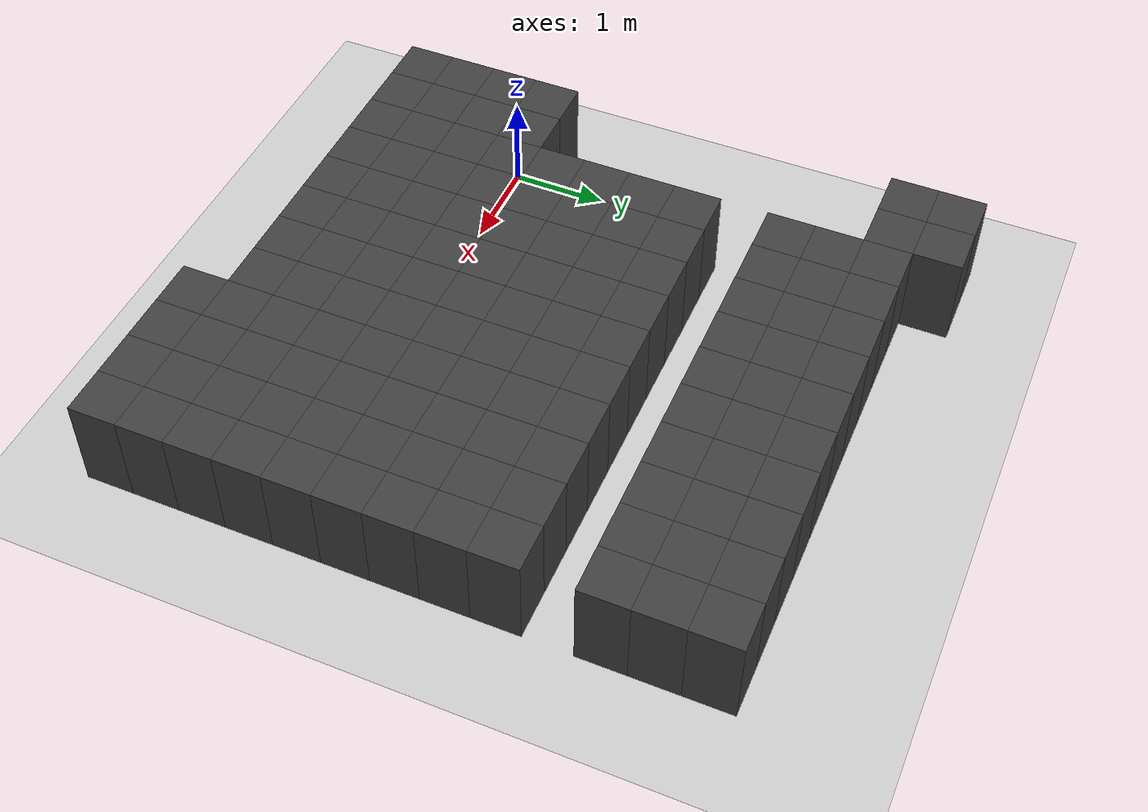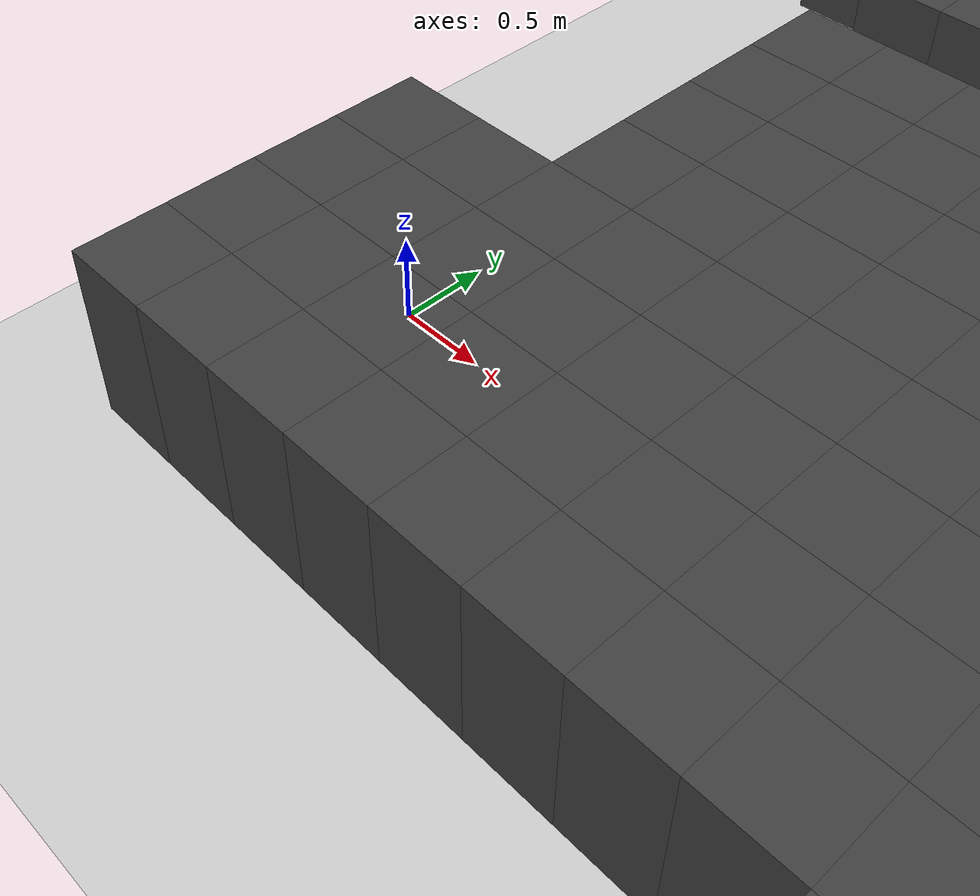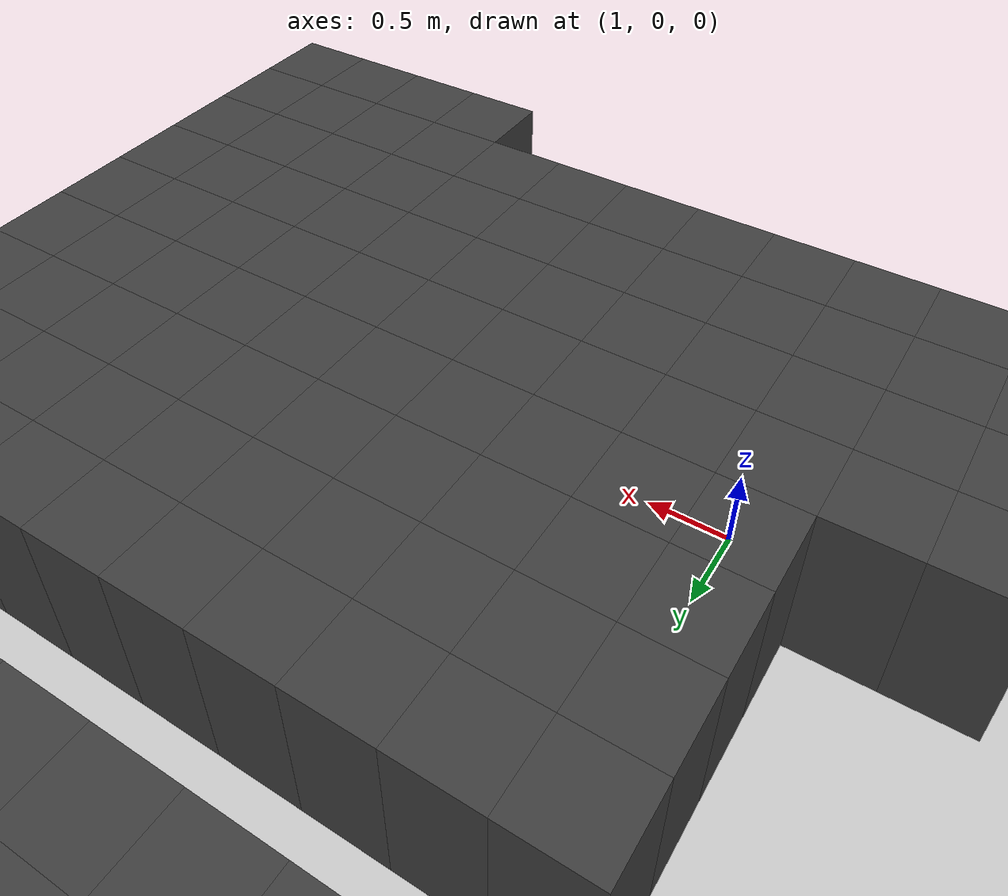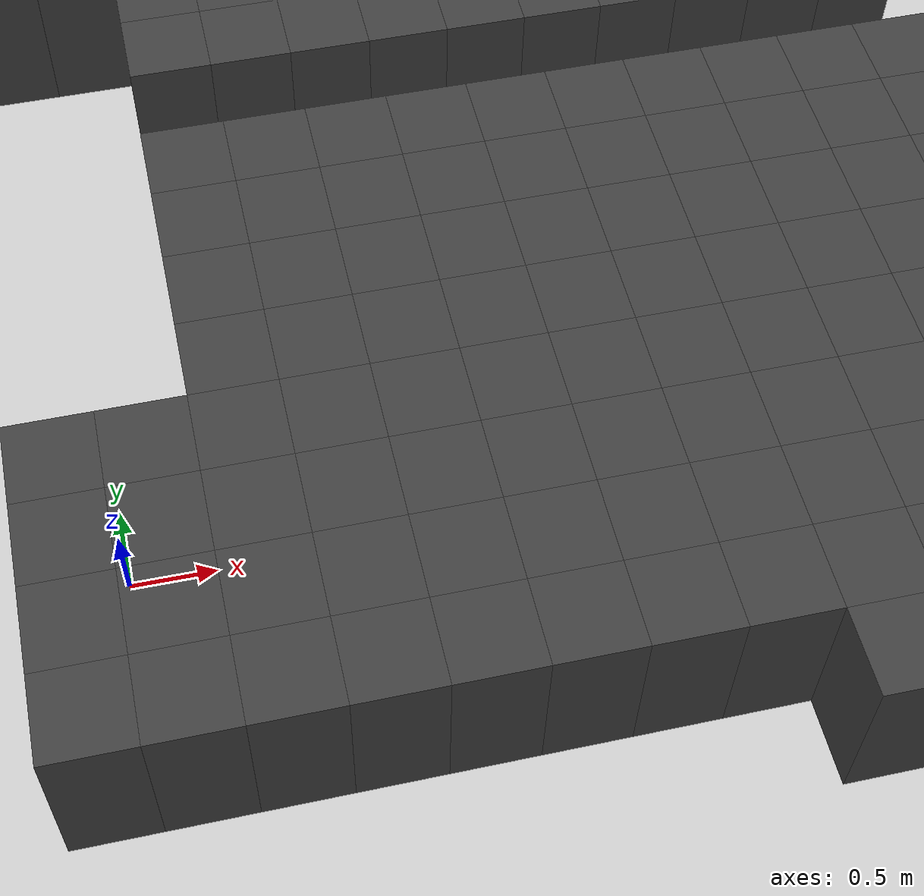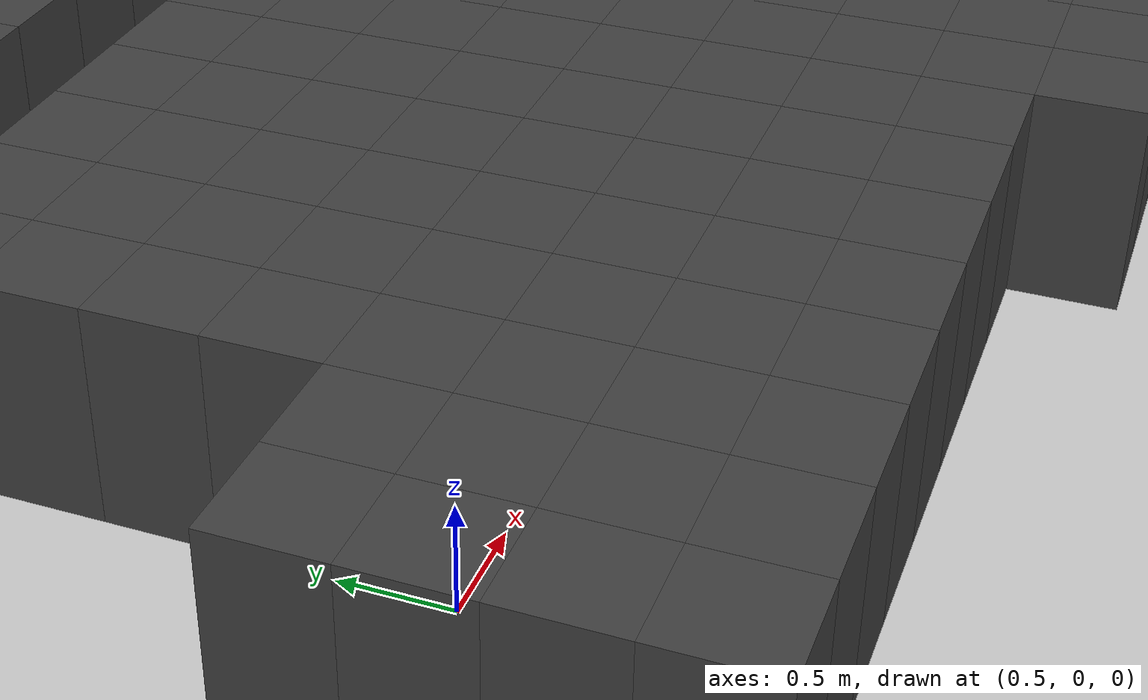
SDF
<sdf version="1.7">
 <world name="map_10764">
  <model name="ground_plane">
   <static>true</static>
   <link name="link">
    <collision name="collision">
     <geometry><plane><normal>0 0 1</normal><size>200 200</size></plane></geometry>
    </collision>
    <visual name="visual">
     <geometry><plane><normal>0 0 1</normal><size>200 200</size></plane></geometry>
     <material><ambient>0.8 0.8 0.8 1</ambient><diffuse>0.8 0.8 0.8 1</diffuse></material>
    </visual>
   </link>
  </model>
  <model name="maze_environment">
   <static>true</static>
   <link name="wall_709">
    <pose>-0.250 4.750 0.500 0 0 0</pose>
    <collision name="col"><geometry><box><size>0.5 0.5 1.0</size></box></geometry></collision>
    <visual name="vis">
     <geometry><box><size>0.5 0.5 1.0</size></box></geometry>
     <material><ambient>0.15 0.15 0.15 1</ambient><diffuse>0.25 0.25 0.25 1</diffuse></material>
    </visual>
   </link>
   <link name="wall_710">
    <pose>0.250 4.750 0.500 0 0 0</pose>
    <collision name="col"><geometry><box><size>0.5 0.5 1.0</size></box></geometry></collision>
    <visual name="vis">
     <geometry><box><size>0.5 0.5 1.0</size></box></geometry>
     <material><ambient>0.15 0.15 0.15 1</ambient><diffuse>0.25 0.25 0.25 1</diffuse></material>
    </visual>
   </link>
   <link name="wall_751">
    <pose>-0.250 4.250 0.500 0 0 0</pose>
    <collision name="col"><geometry><box><size>0.5 0.5 1.0</size></box></geometry></collision>
    <visual name="vis">
     <geometry><box><size>0.5 0.5 1.0</size></box></geometry>
     <material><ambient>0.15 0.15 0.15 1</ambient><diffuse>0.25 0.25 0.25 1</diffuse></material>
    </visual>
   </link>
   <link name="wall_752">
    <pose>0.250 4.250 0.500 0 0 0</pose>
    <collision name="col"><geometry><box><size>0.5 0.5 1.0</size></box></geometry></collision>
    <visual name="vis">
     <geometry><box><size>0.5 0.5 1.0</size></box></geometry>
     <material><ambient>0.15 0.15 0.15 1</ambient><diffuse>0.25 0.25 0.25 1</diffuse></material>
    </visual>
   </link>
   <link name="wall_753">
    <pose>0.750 4.250 0.500 0 0 0</pose>
    <collision name="col"><geometry><box><size>0.5 0.5 1.0</size></box></geometry></collision>
    <visual name="vis">
     <geometry><box><size>0.5 0.5 1.0</size></box></geometry>
     <material><ambient>0.15 0.15 0.15 1</ambient><diffuse>0.25 0.25 0.25 1</diffuse></material>
    </visual>
   </link>
   <link name="wall_754">
    <pose>1.250 4.250 0.500 0 0 0</pose>
    <collision name="col"><geometry><box><size>0.5 0.5 1.0</size></box></geometry></collision>
    <visual name="vis">
     <geometry><box><size>0.5 0.5 1.0</size></box></geometry>
     <material><ambient>0.15 0.15 0.15 1</ambient><diffuse>0.25 0.25 0.25 1</diffuse></material>
    </visual>
   </link>
   <link name="wall_755">
    <pose>1.750 4.250 0.500 0 0 0</pose>
    <collision name="col"><geometry><box><size>0.5 0.5 1.0</size></box></geometry></collision>
    <visual name="vis">
     <geometry><box><size>0.5 0.5 1.0</size></box></geometry>
     <material><ambient>0.15 0.15 0.15 1</ambient><diffuse>0.25 0.25 0.25 1</diffuse></material>
    </visual>
   </link>
   <link name="wall_756">
    <pose>2.250 4.250 0.500 0 0 0</pose>
    <collision name="col"><geometry><box><size>0.5 0.5 1.0</size></box></geometry></collision>
    <visual name="vis">
     <geometry><box><size>0.5 0.5 1.0</size></box></geometry>
     <material><ambient>0.15 0.15 0.15 1</ambient><diffuse>0.25 0.25 0.25 1</diffuse></material>
    </visual>
   </link>
   <link name="wall_757">
    <pose>2.750 4.250 0.500 0 0 0</pose>
    <collision name="col"><geometry><box><size>0.5 0.5 1.0</size></box></geometry></collision>
    <visual name="vis">
     <geometry><box><size>0.5 0.5 1.0</size></box></geometry>
     <material><ambient>0.15 0.15 0.15 1</ambient><diffuse>0.25 0.25 0.25 1</diffuse></material>
    </visual>
   </link>
   <link name="wall_758">
    <pose>3.250 4.250 0.500 0 0 0</pose>
    <collision name="col"><geometry><box><size>0.5 0.5 1.0</size></box></geometry></collision>
    <visual name="vis">
     <geometry><box><size>0.5 0.5 1.0</size></box></geometry>
     <material><ambient>0.15 0.15 0.15 1</ambient><diffuse>0.25 0.25 0.25 1</diffuse></material>
    </visual>
   </link>
   <link name="wall_759">
    <pose>3.750 4.250 0.500 0 0 0</pose>
    <collision name="col"><geometry><box><size>0.5 0.5 1.0</size></box></geometry></collision>
    <visual name="vis">
     <geometry><box><size>0.5 0.5 1.0</size></box></geometry>
     <material><ambient>0.15 0.15 0.15 1</ambient><diffuse>0.25 0.25 0.25 1</diffuse></material>
    </visual>
   </link>
   <link name="wall_760">
    <pose>4.250 4.250 0.500 0 0 0</pose>
    <collision name="col"><geometry><box><size>0.5 0.5 1.0</size></box></geometry></collision>
    <visual name="vis">
     <geometry><box><size>0.5 0.5 1.0</size></box></geometry>
     <material><ambient>0.15 0.15 0.15 1</ambient><diffuse>0.25 0.25 0.25 1</diffuse></material>
    </visual>
   </link>
   <link name="wall_761">
    <pose>4.750 4.250 0.500 0 0 0</pose>
    <collision name="col"><geometry><box><size>0.5 0.5 1.0</size></box></geometry></collision>
    <visual name="vis">
     <geometry><box><size>0.5 0.5 1.0</size></box></geometry>
     <material><ambient>0.15 0.15 0.15 1</ambient><diffuse>0.25 0.25 0.25 1</diffuse></material>
    </visual>
   </link>
   <link name="wall_762">
    <pose>5.250 4.250 0.500 0 0 0</pose>
    <collision name="col"><geometry><box><size>0.5 0.5 1.0</size></box></geometry></collision>
    <visual name="vis">
     <geometry><box><size>0.5 0.5 1.0</size></box></geometry>
     <material><ambient>0.15 0.15 0.15 1</ambient><diffuse>0.25 0.25 0.25 1</diffuse></material>
    </visual>
   </link>
   <link name="wall_786">
    <pose>0.750 3.750 0.500 0 0 0</pose>
    <collision name="col"><geometry><box><size>0.5 0.5 1.0</size></box></geometry></collision>
    <visual name="vis">
     <geometry><box><size>0.5 0.5 1.0</size></box></geometry>
     <material><ambient>0.15 0.15 0.15 1</ambient><diffuse>0.25 0.25 0.25 1</diffuse></material>
    </visual>
   </link>
   <link name="wall_787">
    <pose>1.250 3.750 0.500 0 0 0</pose>
    <collision name="col"><geometry><box><size>0.5 0.5 1.0</size></box></geometry></collision>
    <visual name="vis">
     <geometry><box><size>0.5 0.5 1.0</size></box></geometry>
     <material><ambient>0.15 0.15 0.15 1</ambient><diffuse>0.25 0.25 0.25 1</diffuse></material>
    </visual>
   </link>
   <link name="wall_788">
    <pose>1.750 3.750 0.500 0 0 0</pose>
    <collision name="col"><geometry><box><size>0.5 0.5 1.0</size></box></geometry></collision>
    <visual name="vis">
     <geometry><box><size>0.5 0.5 1.0</size></box></geometry>
     <material><ambient>0.15 0.15 0.15 1</ambient><diffuse>0.25 0.25 0.25 1</diffuse></material>
    </visual>
   </link>
   <link name="wall_789">
    <pose>2.250 3.750 0.500 0 0 0</pose>
    <collision name="col"><geometry><box><size>0.5 0.5 1.0</size></box></geometry></collision>
    <visual name="vis">
     <geometry><box><size>0.5 0.5 1.0</size></box></geometry>
     <material><ambient>0.15 0.15 0.15 1</ambient><diffuse>0.25 0.25 0.25 1</diffuse></material>
    </visual>
   </link>
   <link name="wall_790">
    <pose>2.750 3.750 0.500 0 0 0</pose>
    <collision name="col"><geometry><box><size>0.5 0.5 1.0</size></box></geometry></collision>
    <visual name="vis">
     <geometry><box><size>0.5 0.5 1.0</size></box></geometry>
     <material><ambient>0.15 0.15 0.15 1</ambient><diffuse>0.25 0.25 0.25 1</diffuse></material>
    </visual>
   </link>
   <link name="wall_791">
    <pose>3.250 3.750 0.500 0 0 0</pose>
    <collision name="col"><geometry><box><size>0.5 0.5 1.0</size></box></geometry></collision>
    <visual name="vis">
     <geometry><box><size>0.5 0.5 1.0</size></box></geometry>
     <material><ambient>0.15 0.15 0.15 1</ambient><diffuse>0.25 0.25 0.25 1</diffuse></material>
    </visual>
   </link>
   <link name="wall_792">
    <pose>3.750 3.750 0.500 0 0 0</pose>
    <collision name="col"><geometry><box><size>0.5 0.5 1.0</size></box></geometry></collision>
    <visual name="vis">
     <geometry><box><size>0.5 0.5 1.0</size></box></geometry>
     <material><ambient>0.15 0.15 0.15 1</ambient><diffuse>0.25 0.25 0.25 1</diffuse></material>
    </visual>
   </link>
   <link name="wall_793">
    <pose>4.250 3.750 0.500 0 0 0</pose>
    <collision name="col"><geometry><box><size>0.5 0.5 1.0</size></box></geometry></collision>
    <visual name="vis">
     <geometry><box><size>0.5 0.5 1.0</size></box></geometry>
     <material><ambient>0.15 0.15 0.15 1</ambient><diffuse>0.25 0.25 0.25 1</diffuse></material>
    </visual>
   </link>
   <link name="wall_794">
    <pose>4.750 3.750 0.500 0 0 0</pose>
    <collision name="col"><geometry><box><size>0.5 0.5 1.0</size></box></geometry></collision>
    <visual name="vis">
     <geometry><box><size>0.5 0.5 1.0</size></box></geometry>
     <material><ambient>0.15 0.15 0.15 1</ambient><diffuse>0.25 0.25 0.25 1</diffuse></material>
    </visual>
   </link>
   <link name="wall_795">
    <pose>5.250 3.750 0.500 0 0 0</pose>
    <collision name="col"><geometry><box><size>0.5 0.5 1.0</size></box></geometry></collision>
    <visual name="vis">
     <geometry><box><size>0.5 0.5 1.0</size></box></geometry>
     <material><ambient>0.15 0.15 0.15 1</ambient><diffuse>0.25 0.25 0.25 1</diffuse></material>
    </visual>
   </link>
   <link name="wall_810">
    <pose>0.750 3.250 0.500 0 0 0</pose>
    <collision name="col"><geometry><box><size>0.5 0.5 1.0</size></box></geometry></collision>
    <visual name="vis">
     <geometry><box><size>0.5 0.5 1.0</size></box></geometry>
     <material><ambient>0.15 0.15 0.15 1</ambient><diffuse>0.25 0.25 0.25 1</diffuse></material>
    </visual>
   </link>
   <link name="wall_811">
    <pose>1.250 3.250 0.500 0 0 0</pose>
    <collision name="col"><geometry><box><size>0.5 0.5 1.0</size></box></geometry></collision>
    <visual name="vis">
     <geometry><box><size>0.5 0.5 1.0</size></box></geometry>
     <material><ambient>0.15 0.15 0.15 1</ambient><diffuse>0.25 0.25 0.25 1</diffuse></material>
    </visual>
   </link>
   <link name="wall_812">
    <pose>1.750 3.250 0.500 0 0 0</pose>
    <collision name="col"><geometry><box><size>0.5 0.5 1.0</size></box></geometry></collision>
    <visual name="vis">
     <geometry><box><size>0.5 0.5 1.0</size></box></geometry>
     <material><ambient>0.15 0.15 0.15 1</ambient><diffuse>0.25 0.25 0.25 1</diffuse></material>
    </visual>
   </link>
   <link name="wall_813">
    <pose>2.250 3.250 0.500 0 0 0</pose>
    <collision name="col"><geometry><box><size>0.5 0.5 1.0</size></box></geometry></collision>
    <visual name="vis">
     <geometry><box><size>0.5 0.5 1.0</size></box></geometry>
     <material><ambient>0.15 0.15 0.15 1</ambient><diffuse>0.25 0.25 0.25 1</diffuse></material>
    </visual>
   </link>
   <link name="wall_814">
    <pose>2.750 3.250 0.500 0 0 0</pose>
    <collision name="col"><geometry><box><size>0.5 0.5 1.0</size></box></geometry></collision>
    <visual name="vis">
     <geometry><box><size>0.5 0.5 1.0</size></box></geometry>
     <material><ambient>0.15 0.15 0.15 1</ambient><diffuse>0.25 0.25 0.25 1</diffuse></material>
    </visual>
   </link>
   <link name="wall_815">
    <pose>3.250 3.250 0.500 0 0 0</pose>
    <collision name="col"><geometry><box><size>0.5 0.5 1.0</size></box></geometry></collision>
    <visual name="vis">
     <geometry><box><size>0.5 0.5 1.0</size></box></geometry>
     <material><ambient>0.15 0.15 0.15 1</ambient><diffuse>0.25 0.25 0.25 1</diffuse></material>
    </visual>
   </link>
   <link name="wall_816">
    <pose>3.750 3.250 0.500 0 0 0</pose>
    <collision name="col"><geometry><box><size>0.5 0.5 1.0</size></box></geometry></collision>
    <visual name="vis">
     <geometry><box><size>0.5 0.5 1.0</size></box></geometry>
     <material><ambient>0.15 0.15 0.15 1</ambient><diffuse>0.25 0.25 0.25 1</diffuse></material>
    </visual>
   </link>
   <link name="wall_817">
    <pose>4.250 3.250 0.500 0 0 0</pose>
    <collision name="col"><geometry><box><size>0.5 0.5 1.0</size></box></geometry></collision>
    <visual name="vis">
     <geometry><box><size>0.5 0.5 1.0</size></box></geometry>
     <material><ambient>0.15 0.15 0.15 1</ambient><diffuse>0.25 0.25 0.25 1</diffuse></material>
    </visual>
   </link>
   <link name="wall_818">
    <pose>4.750 3.250 0.500 0 0 0</pose>
    <collision name="col"><geometry><box><size>0.5 0.5 1.0</size></box></geometry></collision>
    <visual name="vis">
     <geometry><box><size>0.5 0.5 1.0</size></box></geometry>
     <material><ambient>0.15 0.15 0.15 1</ambient><diffuse>0.25 0.25 0.25 1</diffuse></material>
    </visual>
   </link>
   <link name="wall_819">
    <pose>5.250 3.250 0.500 0 0 0</pose>
    <collision name="col"><geometry><box><size>0.5 0.5 1.0</size></box></geometry></collision>
    <visual name="vis">
     <geometry><box><size>0.5 0.5 1.0</size></box></geometry>
     <material><ambient>0.15 0.15 0.15 1</ambient><diffuse>0.25 0.25 0.25 1</diffuse></material>
    </visual>
   </link>
   <link name="wall_864">
    <pose>0.750 2.250 0.500 0 0 0</pose>
    <collision name="col"><geometry><box><size>0.5 0.5 1.0</size></box></geometry></collision>
    <visual name="vis">
     <geometry><box><size>0.5 0.5 1.0</size></box></geometry>
     <material><ambient>0.15 0.15 0.15 1</ambient><diffuse>0.25 0.25 0.25 1</diffuse></material>
    </visual>
   </link>
   <link name="wall_865">
    <pose>1.250 2.250 0.500 0 0 0</pose>
    <collision name="col"><geometry><box><size>0.5 0.5 1.0</size></box></geometry></collision>
    <visual name="vis">
     <geometry><box><size>0.5 0.5 1.0</size></box></geometry>
     <material><ambient>0.15 0.15 0.15 1</ambient><diffuse>0.25 0.25 0.25 1</diffuse></material>
    </visual>
   </link>
   <link name="wall_866">
    <pose>1.750 2.250 0.500 0 0 0</pose>
    <collision name="col"><geometry><box><size>0.5 0.5 1.0</size></box></geometry></collision>
    <visual name="vis">
     <geometry><box><size>0.5 0.5 1.0</size></box></geometry>
     <material><ambient>0.15 0.15 0.15 1</ambient><diffuse>0.25 0.25 0.25 1</diffuse></material>
    </visual>
   </link>
   <link name="wall_867">
    <pose>2.250 2.250 0.500 0 0 0</pose>
    <collision name="col"><geometry><box><size>0.5 0.5 1.0</size></box></geometry></collision>
    <visual name="vis">
     <geometry><box><size>0.5 0.5 1.0</size></box></geometry>
     <material><ambient>0.15 0.15 0.15 1</ambient><diffuse>0.25 0.25 0.25 1</diffuse></material>
    </visual>
   </link>
   <link name="wall_868">
    <pose>2.750 2.250 0.500 0 0 0</pose>
    <collision name="col"><geometry><box><size>0.5 0.5 1.0</size></box></geometry></collision>
    <visual name="vis">
     <geometry><box><size>0.5 0.5 1.0</size></box></geometry>
     <material><ambient>0.15 0.15 0.15 1</ambient><diffuse>0.25 0.25 0.25 1</diffuse></material>
    </visual>
   </link>
   <link name="wall_869">
    <pose>3.250 2.250 0.500 0 0 0</pose>
    <collision name="col"><geometry><box><size>0.5 0.5 1.0</size></box></geometry></collision>
    <visual name="vis">
     <geometry><box><size>0.5 0.5 1.0</size></box></geometry>
     <material><ambient>0.15 0.15 0.15 1</ambient><diffuse>0.25 0.25 0.25 1</diffuse></material>
    </visual>
   </link>
   <link name="wall_870">
    <pose>3.750 2.250 0.500 0 0 0</pose>
    <collision name="col"><geometry><box><size>0.5 0.5 1.0</size></box></geometry></collision>
    <visual name="vis">
     <geometry><box><size>0.5 0.5 1.0</size></box></geometry>
     <material><ambient>0.15 0.15 0.15 1</ambient><diffuse>0.25 0.25 0.25 1</diffuse></material>
    </visual>
   </link>
   <link name="wall_871">
    <pose>4.250 2.250 0.500 0 0 0</pose>
    <collision name="col"><geometry><box><size>0.5 0.5 1.0</size></box></geometry></collision>
    <visual name="vis">
     <geometry><box><size>0.5 0.5 1.0</size></box></geometry>
     <material><ambient>0.15 0.15 0.15 1</ambient><diffuse>0.25 0.25 0.25 1</diffuse></material>
    </visual>
   </link>
   <link name="wall_872">
    <pose>4.750 2.250 0.500 0 0 0</pose>
    <collision name="col"><geometry><box><size>0.5 0.5 1.0</size></box></geometry></collision>
    <visual name="vis">
     <geometry><box><size>0.5 0.5 1.0</size></box></geometry>
     <material><ambient>0.15 0.15 0.15 1</ambient><diffuse>0.25 0.25 0.25 1</diffuse></material>
    </visual>
   </link>
   <link name="wall_873">
    <pose>5.250 2.250 0.500 0 0 0</pose>
    <collision name="col"><geometry><box><size>0.5 0.5 1.0</size></box></geometry></collision>
    <visual name="vis">
     <geometry><box><size>0.5 0.5 1.0</size></box></geometry>
     <material><ambient>0.15 0.15 0.15 1</ambient><diffuse>0.25 0.25 0.25 1</diffuse></material>
    </visual>
   </link>
   <link name="wall_896">
    <pose>0.750 1.750 0.500 0 0 0</pose>
    <collision name="col"><geometry><box><size>0.5 0.5 1.0</size></box></geometry></collision>
    <visual name="vis">
     <geometry><box><size>0.5 0.5 1.0</size></box></geometry>
     <material><ambient>0.15 0.15 0.15 1</ambient><diffuse>0.25 0.25 0.25 1</diffuse></material>
    </visual>
   </link>
   <link name="wall_897">
    <pose>1.250 1.750 0.500 0 0 0</pose>
    <collision name="col"><geometry><box><size>0.5 0.5 1.0</size></box></geometry></collision>
    <visual name="vis">
     <geometry><box><size>0.5 0.5 1.0</size></box></geometry>
     <material><ambient>0.15 0.15 0.15 1</ambient><diffuse>0.25 0.25 0.25 1</diffuse></material>
    </visual>
   </link>
   <link name="wall_898">
    <pose>1.750 1.750 0.500 0 0 0</pose>
    <collision name="col"><geometry><box><size>0.5 0.5 1.0</size></box></geometry></collision>
    <visual name="vis">
     <geometry><box><size>0.5 0.5 1.0</size></box></geometry>
     <material><ambient>0.15 0.15 0.15 1</ambient><diffuse>0.25 0.25 0.25 1</diffuse></material>
    </visual>
   </link>
   <link name="wall_899">
    <pose>2.250 1.750 0.500 0 0 0</pose>
    <collision name="col"><geometry><box><size>0.5 0.5 1.0</size></box></geometry></collision>
    <visual name="vis">
     <geometry><box><size>0.5 0.5 1.0</size></box></geometry>
     <material><ambient>0.15 0.15 0.15 1</ambient><diffuse>0.25 0.25 0.25 1</diffuse></material>
    </visual>
   </link>
   <link name="wall_900">
    <pose>2.750 1.750 0.500 0 0 0</pose>
    <collision name="col"><geometry><box><size>0.5 0.5 1.0</size></box></geometry></collision>
    <visual name="vis">
     <geometry><box><size>0.5 0.5 1.0</size></box></geometry>
     <material><ambient>0.15 0.15 0.15 1</ambient><diffuse>0.25 0.25 0.25 1</diffuse></material>
    </visual>
   </link>
   <link name="wall_901">
    <pose>3.250 1.750 0.500 0 0 0</pose>
    <collision name="col"><geometry><box><size>0.5 0.5 1.0</size></box></geometry></collision>
    <visual name="vis">
     <geometry><box><size>0.5 0.5 1.0</size></box></geometry>
     <material><ambient>0.15 0.15 0.15 1</ambient><diffuse>0.25 0.25 0.25 1</diffuse></material>
    </visual>
   </link>
   <link name="wall_902">
    <pose>3.750 1.750 0.500 0 0 0</pose>
    <collision name="col"><geometry><box><size>0.5 0.5 1.0</size></box></geometry></collision>
    <visual name="vis">
     <geometry><box><size>0.5 0.5 1.0</size></box></geometry>
     <material><ambient>0.15 0.15 0.15 1</ambient><diffuse>0.25 0.25 0.25 1</diffuse></material>
    </visual>
   </link>
   <link name="wall_903">
    <pose>4.250 1.750 0.500 0 0 0</pose>
    <collision name="col"><geometry><box><size>0.5 0.5 1.0</size></box></geometry></collision>
    <visual name="vis">
     <geometry><box><size>0.5 0.5 1.0</size></box></geometry>
     <material><ambient>0.15 0.15 0.15 1</ambient><diffuse>0.25 0.25 0.25 1</diffuse></material>
    </visual>
   </link>
   <link name="wall_904">
    <pose>4.750 1.750 0.500 0 0 0</pose>
    <collision name="col"><geometry><box><size>0.5 0.5 1.0</size></box></geometry></collision>
    <visual name="vis">
     <geometry><box><size>0.5 0.5 1.0</size></box></geometry>
     <material><ambient>0.15 0.15 0.15 1</ambient><diffuse>0.25 0.25 0.25 1</diffuse></material>
    </visual>
   </link>
   <link name="wall_905">
    <pose>5.250 1.750 0.500 0 0 0</pose>
    <collision name="col"><geometry><box><size>0.5 0.5 1.0</size></box></geometry></collision>
    <visual name="vis">
     <geometry><box><size>0.5 0.5 1.0</size></box></geometry>
     <material><ambient>0.15 0.15 0.15 1</ambient><diffuse>0.25 0.25 0.25 1</diffuse></material>
    </visual>
   </link>
   <link name="wall_928">
    <pose>0.750 1.250 0.500 0 0 0</pose>
    <collision name="col"><geometry><box><size>0.5 0.5 1.0</size></box></geometry></collision>
    <visual name="vis">
     <geometry><box><size>0.5 0.5 1.0</size></box></geometry>
     <material><ambient>0.15 0.15 0.15 1</ambient><diffuse>0.25 0.25 0.25 1</diffuse></material>
    </visual>
   </link>
   <link name="wall_929">
    <pose>1.250 1.250 0.500 0 0 0</pose>
    <collision name="col"><geometry><box><size>0.5 0.5 1.0</size></box></geometry></collision>
    <visual name="vis">
     <geometry><box><size>0.5 0.5 1.0</size></box></geometry>
     <material><ambient>0.15 0.15 0.15 1</ambient><diffuse>0.25 0.25 0.25 1</diffuse></material>
    </visual>
   </link>
   <link name="wall_930">
    <pose>1.750 1.250 0.500 0 0 0</pose>
    <collision name="col"><geometry><box><size>0.5 0.5 1.0</size></box></geometry></collision>
    <visual name="vis">
     <geometry><box><size>0.5 0.5 1.0</size></box></geometry>
     <material><ambient>0.15 0.15 0.15 1</ambient><diffuse>0.25 0.25 0.25 1</diffuse></material>
    </visual>
   </link>
   <link name="wall_931">
    <pose>2.250 1.250 0.500 0 0 0</pose>
    <collision name="col"><geometry><box><size>0.5 0.5 1.0</size></box></geometry></collision>
    <visual name="vis">
     <geometry><box><size>0.5 0.5 1.0</size></box></geometry>
     <material><ambient>0.15 0.15 0.15 1</ambient><diffuse>0.25 0.25 0.25 1</diffuse></material>
    </visual>
   </link>
   <link name="wall_932">
    <pose>2.750 1.250 0.500 0 0 0</pose>
    <collision name="col"><geometry><box><size>0.5 0.5 1.0</size></box></geometry></collision>
    <visual name="vis">
     <geometry><box><size>0.5 0.5 1.0</size></box></geometry>
     <material><ambient>0.15 0.15 0.15 1</ambient><diffuse>0.25 0.25 0.25 1</diffuse></material>
    </visual>
   </link>
   <link name="wall_933">
    <pose>3.250 1.250 0.500 0 0 0</pose>
    <collision name="col"><geometry><box><size>0.5 0.5 1.0</size></box></geometry></collision>
    <visual name="vis">
     <geometry><box><size>0.5 0.5 1.0</size></box></geometry>
     <material><ambient>0.15 0.15 0.15 1</ambient><diffuse>0.25 0.25 0.25 1</diffuse></material>
    </visual>
   </link>
   <link name="wall_934">
    <pose>3.750 1.250 0.500 0 0 0</pose>
    <collision name="col"><geometry><box><size>0.5 0.5 1.0</size></box></geometry></collision>
    <visual name="vis">
     <geometry><box><size>0.5 0.5 1.0</size></box></geometry>
     <material><ambient>0.15 0.15 0.15 1</ambient><diffuse>0.25 0.25 0.25 1</diffuse></material>
    </visual>
   </link>
   <link name="wall_935">
    <pose>4.250 1.250 0.500 0 0 0</pose>
    <collision name="col"><geometry><box><size>0.5 0.5 1.0</size></box></geometry></collision>
    <visual name="vis">
     <geometry><box><size>0.5 0.5 1.0</size></box></geometry>
     <material><ambient>0.15 0.15 0.15 1</ambient><diffuse>0.25 0.25 0.25 1</diffuse></material>
    </visual>
   </link>
   <link name="wall_936">
    <pose>4.750 1.250 0.500 0 0 0</pose>
    <collision name="col"><geometry><box><size>0.5 0.5 1.0</size></box></geometry></collision>
    <visual name="vis">
     <geometry><box><size>0.5 0.5 1.0</size></box></geometry>
     <material><ambient>0.15 0.15 0.15 1</ambient><diffuse>0.25 0.25 0.25 1</diffuse></material>
    </visual>
   </link>
   <link name="wall_937">
    <pose>5.250 1.250 0.500 0 0 0</pose>
    <collision name="col"><geometry><box><size>0.5 0.5 1.0</size></box></geometry></collision>
    <visual name="vis">
     <geometry><box><size>0.5 0.5 1.0</size></box></geometry>
     <material><ambient>0.15 0.15 0.15 1</ambient><diffuse>0.25 0.25 0.25 1</diffuse></material>
    </visual>
   </link>
   <link name="wall_960">
    <pose>0.750 0.750 0.500 0 0 0</pose>
    <collision name="col"><geometry><box><size>0.5 0.5 1.0</size></box></geometry></collision>
    <visual name="vis">
     <geometry><box><size>0.5 0.5 1.0</size></box></geometry>
     <material><ambient>0.15 0.15 0.15 1</ambient><diffuse>0.25 0.25 0.25 1</diffuse></material>
    </visual>
   </link>
   <link name="wall_961">
    <pose>1.250 0.750 0.500 0 0 0</pose>
    <collision name="col"><geometry><box><size>0.5 0.5 1.0</size></box></geometry></collision>
    <visual name="vis">
     <geometry><box><size>0.5 0.5 1.0</size></box></geometry>
     <material><ambient>0.15 0.15 0.15 1</ambient><diffuse>0.25 0.25 0.25 1</diffuse></material>
    </visual>
   </link>
   <link name="wall_962">
    <pose>1.750 0.750 0.500 0 0 0</pose>
    <collision name="col"><geometry><box><size>0.5 0.5 1.0</size></box></geometry></collision>
    <visual name="vis">
     <geometry><box><size>0.5 0.5 1.0</size></box></geometry>
     <material><ambient>0.15 0.15 0.15 1</ambient><diffuse>0.25 0.25 0.25 1</diffuse></material>
    </visual>
   </link>
   <link name="wall_963">
    <pose>2.250 0.750 0.500 0 0 0</pose>
    <collision name="col"><geometry><box><size>0.5 0.5 1.0</size></box></geometry></collision>
    <visual name="vis">
     <geometry><box><size>0.5 0.5 1.0</size></box></geometry>
     <material><ambient>0.15 0.15 0.15 1</ambient><diffuse>0.25 0.25 0.25 1</diffuse></material>
    </visual>
   </link>
   <link name="wall_964">
    <pose>2.750 0.750 0.500 0 0 0</pose>
    <collision name="col"><geometry><box><size>0.5 0.5 1.0</size></box></geometry></collision>
    <visual name="vis">
     <geometry><box><size>0.5 0.5 1.0</size></box></geometry>
     <material><ambient>0.15 0.15 0.15 1</ambient><diffuse>0.25 0.25 0.25 1</diffuse></material>
    </visual>
   </link>
   <link name="wall_965">
    <pose>3.250 0.750 0.500 0 0 0</pose>
    <collision name="col"><geometry><box><size>0.5 0.5 1.0</size></box></geometry></collision>
    <visual name="vis">
     <geometry><box><size>0.5 0.5 1.0</size></box></geometry>
     <material><ambient>0.15 0.15 0.15 1</ambient><diffuse>0.25 0.25 0.25 1</diffuse></material>
    </visual>
   </link>
   <link name="wall_966">
    <pose>3.750 0.750 0.500 0 0 0</pose>
    <collision name="col"><geometry><box><size>0.5 0.5 1.0</size></box></geometry></collision>
    <visual name="vis">
     <geometry><box><size>0.5 0.5 1.0</size></box></geometry>
     <material><ambient>0.15 0.15 0.15 1</ambient><diffuse>0.25 0.25 0.25 1</diffuse></material>
    </visual>
   </link>
   <link name="wall_967">
    <pose>4.250 0.750 0.500 0 0 0</pose>
    <collision name="col"><geometry><box><size>0.5 0.5 1.0</size></box></geometry></collision>
    <visual name="vis">
     <geometry><box><size>0.5 0.5 1.0</size></box></geometry>
     <material><ambient>0.15 0.15 0.15 1</ambient><diffuse>0.25 0.25 0.25 1</diffuse></material>
    </visual>
   </link>
   <link name="wall_968">
    <pose>4.750 0.750 0.500 0 0 0</pose>
    <collision name="col"><geometry><box><size>0.5 0.5 1.0</size></box></geometry></collision>
    <visual name="vis">
     <geometry><box><size>0.5 0.5 1.0</size></box></geometry>
     <material><ambient>0.15 0.15 0.15 1</ambient><diffuse>0.25 0.25 0.25 1</diffuse></material>
    </visual>
   </link>
   <link name="wall_969">
    <pose>5.250 0.750 0.500 0 0 0</pose>
    <collision name="col"><geometry><box><size>0.5 0.5 1.0</size></box></geometry></collision>
    <visual name="vis">
     <geometry><box><size>0.5 0.5 1.0</size></box></geometry>
     <material><ambient>0.15 0.15 0.15 1</ambient><diffuse>0.25 0.25 0.25 1</diffuse></material>
    </visual>
   </link>
   <link name="wall_998">
    <pose>-0.250 0.250 0.500 0 0 0</pose>
    <collision name="col"><geometry><box><size>0.5 0.5 1.0</size></box></geometry></collision>
    <visual name="vis">
     <geometry><box><size>0.5 0.5 1.0</size></box></geometry>
     <material><ambient>0.15 0.15 0.15 1</ambient><diffuse>0.25 0.25 0.25 1</diffuse></material>
    </visual>
   </link>
   <link name="wall_999">
    <pose>0.250 0.250 0.500 0 0 0</pose>
    <collision name="col"><geometry><box><size>0.5 0.5 1.0</size></box></geometry></collision>
    <visual name="vis">
     <geometry><box><size>0.5 0.5 1.0</size></box></geometry>
     <material><ambient>0.15 0.15 0.15 1</ambient><diffuse>0.25 0.25 0.25 1</diffuse></material>
    </visual>
   </link>
   <link name="wall_1000">
    <pose>0.750 0.250 0.500 0 0 0</pose>
    <collision name="col"><geometry><box><size>0.5 0.5 1.0</size></box></geometry></collision>
    <visual name="vis">
     <geometry><box><size>0.5 0.5 1.0</size></box></geometry>
     <material><ambient>0.15 0.15 0.15 1</ambient><diffuse>0.25 0.25 0.25 1</diffuse></material>
    </visual>
   </link>
   <link name="wall_1001">
    <pose>1.250 0.250 0.500 0 0 0</pose>
    <collision name="col"><geometry><box><size>0.5 0.5 1.0</size></box></geometry></collision>
    <visual name="vis">
     <geometry><box><size>0.5 0.5 1.0</size></box></geometry>
     <material><ambient>0.15 0.15 0.15 1</ambient><diffuse>0.25 0.25 0.25 1</diffuse></material>
    </visual>
   </link>
   <link name="wall_1002">
    <pose>1.750 0.250 0.500 0 0 0</pose>
    <collision name="col"><geometry><box><size>0.5 0.5 1.0</size></box></geometry></collision>
    <visual name="vis">
     <geometry><box><size>0.5 0.5 1.0</size></box></geometry>
     <material><ambient>0.15 0.15 0.15 1</ambient><diffuse>0.25 0.25 0.25 1</diffuse></material>
    </visual>
   </link>
   <link name="wall_1003">
    <pose>2.250 0.250 0.500 0 0 0</pose>
    <collision name="col"><geometry><box><size>0.5 0.5 1.0</size></box></geometry></collision>
    <visual name="vis">
     <geometry><box><size>0.5 0.5 1.0</size></box></geometry>
     <material><ambient>0.15 0.15 0.15 1</ambient><diffuse>0.25 0.25 0.25 1</diffuse></material>
    </visual>
   </link>
   <link name="wall_1004">
    <pose>2.750 0.250 0.500 0 0 0</pose>
    <collision name="col"><geometry><box><size>0.5 0.5 1.0</size></box></geometry></collision>
    <visual name="vis">
     <geometry><box><size>0.5 0.5 1.0</size></box></geometry>
     <material><ambient>0.15 0.15 0.15 1</ambient><diffuse>0.25 0.25 0.25 1</diffuse></material>
    </visual>
   </link>
   <link name="wall_1005">
    <pose>3.250 0.250 0.500 0 0 0</pose>
    <collision name="col"><geometry><box><size>0.5 0.5 1.0</size></box></geometry></collision>
    <visual name="vis">
     <geometry><box><size>0.5 0.5 1.0</size></box></geometry>
     <material><ambient>0.15 0.15 0.15 1</ambient><diffuse>0.25 0.25 0.25 1</diffuse></material>
    </visual>
   </link>
   <link name="wall_1006">
    <pose>3.750 0.250 0.500 0 0 0</pose>
    <collision name="col"><geometry><box><size>0.5 0.5 1.0</size></box></geometry></collision>
    <visual name="vis">
     <geometry><box><size>0.5 0.5 1.0</size></box></geometry>
     <material><ambient>0.15 0.15 0.15 1</ambient><diffuse>0.25 0.25 0.25 1</diffuse></material>
    </visual>
   </link>
   <link name="wall_1007">
    <pose>4.250 0.250 0.500 0 0 0</pose>
    <collision name="col"><geometry><box><size>0.5 0.5 1.0</size></box></geometry></collision>
    <visual name="vis">
     <geometry><box><size>0.5 0.5 1.0</size></box></geometry>
     <material><ambient>0.15 0.15 0.15 1</ambient><diffuse>0.25 0.25 0.25 1</diffuse></material>
    </visual>
   </link>
   <link name="wall_1008">
    <pose>4.750 0.250 0.500 0 0 0</pose>
    <collision name="col"><geometry><box><size>0.5 0.5 1.0</size></box></geometry></collision>
    <visual name="vis">
     <geometry><box><size>0.5 0.5 1.0</size></box></geometry>
     <material><ambient>0.15 0.15 0.15 1</ambient><diffuse>0.25 0.25 0.25 1</diffuse></material>
    </visual>
   </link>
   <link name="wall_1009">
    <pose>5.250 0.250 0.500 0 0 0</pose>
    <collision name="col"><geometry><box><size>0.5 0.5 1.0</size></box></geometry></collision>
    <visual name="vis">
     <geometry><box><size>0.5 0.5 1.0</size></box></geometry>
     <material><ambient>0.15 0.15 0.15 1</ambient><diffuse>0.25 0.25 0.25 1</diffuse></material>
    </visual>
   </link>
   <link name="wall_1038">
    <pose>-0.250 -0.250 0.500 0 0 0</pose>
    <collision name="col"><geometry><box><size>0.5 0.5 1.0</size></box></geometry></collision>
    <visual name="vis">
     <geometry><box><size>0.5 0.5 1.0</size></box></geometry>
     <material><ambient>0.15 0.15 0.15 1</ambient><diffuse>0.25 0.25 0.25 1</diffuse></material>
    </visual>
   </link>
   <link name="wall_1039">
    <pose>0.250 -0.250 0.500 0 0 0</pose>
    <collision name="col"><geometry><box><size>0.5 0.5 1.0</size></box></geometry></collision>
    <visual name="vis">
     <geometry><box><size>0.5 0.5 1.0</size></box></geometry>
     <material><ambient>0.15 0.15 0.15 1</ambient><diffuse>0.25 0.25 0.25 1</diffuse></material>
    </visual>
   </link>
   <link name="wall_1040">
    <pose>0.750 -0.250 0.500 0 0 0</pose>
    <collision name="col"><geometry><box><size>0.5 0.5 1.0</size></box></geometry></collision>
    <visual name="vis">
     <geometry><box><size>0.5 0.5 1.0</size></box></geometry>
     <material><ambient>0.15 0.15 0.15 1</ambient><diffuse>0.25 0.25 0.25 1</diffuse></material>
    </visual>
   </link>
   <link name="wall_1041">
    <pose>1.250 -0.250 0.500 0 0 0</pose>
    <collision name="col"><geometry><box><size>0.5 0.5 1.0</size></box></geometry></collision>
    <visual name="vis">
     <geometry><box><size>0.5 0.5 1.0</size></box></geometry>
     <material><ambient>0.15 0.15 0.15 1</ambient><diffuse>0.25 0.25 0.25 1</diffuse></material>
    </visual>
   </link>
   <link name="wall_1042">
    <pose>1.750 -0.250 0.500 0 0 0</pose>
    <collision name="col"><geometry><box><size>0.5 0.5 1.0</size></box></geometry></collision>
    <visual name="vis">
     <geometry><box><size>0.5 0.5 1.0</size></box></geometry>
     <material><ambient>0.15 0.15 0.15 1</ambient><diffuse>0.25 0.25 0.25 1</diffuse></material>
    </visual>
   </link>
   <link name="wall_1043">
    <pose>2.250 -0.250 0.500 0 0 0</pose>
    <collision name="col"><geometry><box><size>0.5 0.5 1.0</size></box></geometry></collision>
    <visual name="vis">
     <geometry><box><size>0.5 0.5 1.0</size></box></geometry>
     <material><ambient>0.15 0.15 0.15 1</ambient><diffuse>0.25 0.25 0.25 1</diffuse></material>
    </visual>
   </link>
   <link name="wall_1044">
    <pose>2.750 -0.250 0.500 0 0 0</pose>
    <collision name="col"><geometry><box><size>0.5 0.5 1.0</size></box></geometry></collision>
    <visual name="vis">
     <geometry><box><size>0.5 0.5 1.0</size></box></geometry>
     <material><ambient>0.15 0.15 0.15 1</ambient><diffuse>0.25 0.25 0.25 1</diffuse></material>
    </visual>
   </link>
   <link name="wall_1045">
    <pose>3.250 -0.250 0.500 0 0 0</pose>
    <collision name="col"><geometry><box><size>0.5 0.5 1.0</size></box></geometry></collision>
    <visual name="vis">
     <geometry><box><size>0.5 0.5 1.0</size></box></geometry>
     <material><ambient>0.15 0.15 0.15 1</ambient><diffuse>0.25 0.25 0.25 1</diffuse></material>
    </visual>
   </link>
   <link name="wall_1046">
    <pose>3.750 -0.250 0.500 0 0 0</pose>
    <collision name="col"><geometry><box><size>0.5 0.5 1.0</size></box></geometry></collision>
    <visual name="vis">
     <geometry><box><size>0.5 0.5 1.0</size></box></geometry>
     <material><ambient>0.15 0.15 0.15 1</ambient><diffuse>0.25 0.25 0.25 1</diffuse></material>
    </visual>
   </link>
   <link name="wall_1047">
    <pose>4.250 -0.250 0.500 0 0 0</pose>
    <collision name="col"><geometry><box><size>0.5 0.5 1.0</size></box></geometry></collision>
    <visual name="vis">
     <geometry><box><size>0.5 0.5 1.0</size></box></geometry>
     <material><ambient>0.15 0.15 0.15 1</ambient><diffuse>0.25 0.25 0.25 1</diffuse></material>
    </visual>
   </link>
   <link name="wall_1048">
    <pose>4.750 -0.250 0.500 0 0 0</pose>
    <collision name="col"><geometry><box><size>0.5 0.5 1.0</size></box></geometry></collision>
    <visual name="vis">
     <geometry><box><size>0.5 0.5 1.0</size></box></geometry>
     <material><ambient>0.15 0.15 0.15 1</ambient><diffuse>0.25 0.25 0.25 1</diffuse></material>
    </visual>
   </link>
   <link name="wall_1049">
    <pose>5.250 -0.250 0.500 0 0 0</pose>
    <collision name="col"><geometry><box><size>0.5 0.5 1.0</size></box></geometry></collision>
    <visual name="vis">
     <geometry><box><size>0.5 0.5 1.0</size></box></geometry>
     <material><ambient>0.15 0.15 0.15 1</ambient><diffuse>0.25 0.25 0.25 1</diffuse></material>
    </visual>
   </link>
   <link name="wall_1078">
    <pose>-0.250 -0.750 0.500 0 0 0</pose>
    <collision name="col"><geometry><box><size>0.5 0.5 1.0</size></box></geometry></collision>
    <visual name="vis">
     <geometry><box><size>0.5 0.5 1.0</size></box></geometry>
     <material><ambient>0.15 0.15 0.15 1</ambient><diffuse>0.25 0.25 0.25 1</diffuse></material>
    </visual>
   </link>
   <link name="wall_1079">
    <pose>0.250 -0.750 0.500 0 0 0</pose>
    <collision name="col"><geometry><box><size>0.5 0.5 1.0</size></box></geometry></collision>
    <visual name="vis">
     <geometry><box><size>0.5 0.5 1.0</size></box></geometry>
     <material><ambient>0.15 0.15 0.15 1</ambient><diffuse>0.25 0.25 0.25 1</diffuse></material>
    </visual>
   </link>
   <link name="wall_1080">
    <pose>0.750 -0.750 0.500 0 0 0</pose>
    <collision name="col"><geometry><box><size>0.5 0.5 1.0</size></box></geometry></collision>
    <visual name="vis">
     <geometry><box><size>0.5 0.5 1.0</size></box></geometry>
     <material><ambient>0.15 0.15 0.15 1</ambient><diffuse>0.25 0.25 0.25 1</diffuse></material>
    </visual>
   </link>
   <link name="wall_1081">
    <pose>1.250 -0.750 0.500 0 0 0</pose>
    <collision name="col"><geometry><box><size>0.5 0.5 1.0</size></box></geometry></collision>
    <visual name="vis">
     <geometry><box><size>0.5 0.5 1.0</size></box></geometry>
     <material><ambient>0.15 0.15 0.15 1</ambient><diffuse>0.25 0.25 0.25 1</diffuse></material>
    </visual>
   </link>
   <link name="wall_1082">
    <pose>1.750 -0.750 0.500 0 0 0</pose>
    <collision name="col"><geometry><box><size>0.5 0.5 1.0</size></box></geometry></collision>
    <visual name="vis">
     <geometry><box><size>0.5 0.5 1.0</size></box></geometry>
     <material><ambient>0.15 0.15 0.15 1</ambient><diffuse>0.25 0.25 0.25 1</diffuse></material>
    </visual>
   </link>
   <link name="wall_1083">
    <pose>2.250 -0.750 0.500 0 0 0</pose>
    <collision name="col"><geometry><box><size>0.5 0.5 1.0</size></box></geometry></collision>
    <visual name="vis">
     <geometry><box><size>0.5 0.5 1.0</size></box></geometry>
     <material><ambient>0.15 0.15 0.15 1</ambient><diffuse>0.25 0.25 0.25 1</diffuse></material>
    </visual>
   </link>
   <link name="wall_1084">
    <pose>2.750 -0.750 0.500 0 0 0</pose>
    <collision name="col"><geometry><box><size>0.5 0.5 1.0</size></box></geometry></collision>
    <visual name="vis">
     <geometry><box><size>0.5 0.5 1.0</size></box></geometry>
     <material><ambient>0.15 0.15 0.15 1</ambient><diffuse>0.25 0.25 0.25 1</diffuse></material>
    </visual>
   </link>
   <link name="wall_1085">
    <pose>3.250 -0.750 0.500 0 0 0</pose>
    <collision name="col"><geometry><box><size>0.5 0.5 1.0</size></box></geometry></collision>
    <visual name="vis">
     <geometry><box><size>0.5 0.5 1.0</size></box></geometry>
     <material><ambient>0.15 0.15 0.15 1</ambient><diffuse>0.25 0.25 0.25 1</diffuse></material>
    </visual>
   </link>
   <link name="wall_1086">
    <pose>3.750 -0.750 0.500 0 0 0</pose>
    <collision name="col"><geometry><box><size>0.5 0.5 1.0</size></box></geometry></collision>
    <visual name="vis">
     <geometry><box><size>0.5 0.5 1.0</size></box></geometry>
     <material><ambient>0.15 0.15 0.15 1</ambient><diffuse>0.25 0.25 0.25 1</diffuse></material>
    </visual>
   </link>
   <link name="wall_1087">
    <pose>4.250 -0.750 0.500 0 0 0</pose>
    <collision name="col"><geometry><box><size>0.5 0.5 1.0</size></box></geometry></collision>
    <visual name="vis">
     <geometry><box><size>0.5 0.5 1.0</size></box></geometry>
     <material><ambient>0.15 0.15 0.15 1</ambient><diffuse>0.25 0.25 0.25 1</diffuse></material>
    </visual>
   </link>
   <link name="wall_1088">
    <pose>4.750 -0.750 0.500 0 0 0</pose>
    <collision name="col"><geometry><box><size>0.5 0.5 1.0</size></box></geometry></collision>
    <visual name="vis">
     <geometry><box><size>0.5 0.5 1.0</size></box></geometry>
     <material><ambient>0.15 0.15 0.15 1</ambient><diffuse>0.25 0.25 0.25 1</diffuse></material>
    </visual>
   </link>
   <link name="wall_1089">
    <pose>5.250 -0.750 0.500 0 0 0</pose>
    <collision name="col"><geometry><box><size>0.5 0.5 1.0</size></box></geometry></collision>
    <visual name="vis">
     <geometry><box><size>0.5 0.5 1.0</size></box></geometry>
     <material><ambient>0.15 0.15 0.15 1</ambient><diffuse>0.25 0.25 0.25 1</diffuse></material>
    </visual>
   </link>
   <link name="wall_1111">
    <pose>-0.250 -1.250 0.500 0 0 0</pose>
    <collision name="col"><geometry><box><size>0.5 0.5 1.0</size></box></geometry></collision>
    <visual name="vis">
     <geometry><box><size>0.5 0.5 1.0</size></box></geometry>
     <material><ambient>0.15 0.15 0.15 1</ambient><diffuse>0.25 0.25 0.25 1</diffuse></material>
    </visual>
   </link>
   <link name="wall_1112">
    <pose>0.250 -1.250 0.500 0 0 0</pose>
    <collision name="col"><geometry><box><size>0.5 0.5 1.0</size></box></geometry></collision>
    <visual name="vis">
     <geometry><box><size>0.5 0.5 1.0</size></box></geometry>
     <material><ambient>0.15 0.15 0.15 1</ambient><diffuse>0.25 0.25 0.25 1</diffuse></material>
    </visual>
   </link>
   <link name="wall_1113">
    <pose>0.750 -1.250 0.500 0 0 0</pose>
    <collision name="col"><geometry><box><size>0.5 0.5 1.0</size></box></geometry></collision>
    <visual name="vis">
     <geometry><box><size>0.5 0.5 1.0</size></box></geometry>
     <material><ambient>0.15 0.15 0.15 1</ambient><diffuse>0.25 0.25 0.25 1</diffuse></material>
    </visual>
   </link>
   <link name="wall_1114">
    <pose>1.250 -1.250 0.500 0 0 0</pose>
    <collision name="col"><geometry><box><size>0.5 0.5 1.0</size></box></geometry></collision>
    <visual name="vis">
     <geometry><box><size>0.5 0.5 1.0</size></box></geometry>
     <material><ambient>0.15 0.15 0.15 1</ambient><diffuse>0.25 0.25 0.25 1</diffuse></material>
    </visual>
   </link>
   <link name="wall_1115">
    <pose>1.750 -1.250 0.500 0 0 0</pose>
    <collision name="col"><geometry><box><size>0.5 0.5 1.0</size></box></geometry></collision>
    <visual name="vis">
     <geometry><box><size>0.5 0.5 1.0</size></box></geometry>
     <material><ambient>0.15 0.15 0.15 1</ambient><diffuse>0.25 0.25 0.25 1</diffuse></material>
    </visual>
   </link>
   <link name="wall_1116">
    <pose>2.250 -1.250 0.500 0 0 0</pose>
    <collision name="col"><geometry><box><size>0.5 0.5 1.0</size></box></geometry></collision>
    <visual name="vis">
     <geometry><box><size>0.5 0.5 1.0</size></box></geometry>
     <material><ambient>0.15 0.15 0.15 1</ambient><diffuse>0.25 0.25 0.25 1</diffuse></material>
    </visual>
   </link>
   <link name="wall_1117">
    <pose>2.750 -1.250 0.500 0 0 0</pose>
    <collision name="col"><geometry><box><size>0.5 0.5 1.0</size></box></geometry></collision>
    <visual name="vis">
     <geometry><box><size>0.5 0.5 1.0</size></box></geometry>
     <material><ambient>0.15 0.15 0.15 1</ambient><diffuse>0.25 0.25 0.25 1</diffuse></material>
    </visual>
   </link>
   <link name="wall_1118">
    <pose>3.250 -1.250 0.500 0 0 0</pose>
    <collision name="col"><geometry><box><size>0.5 0.5 1.0</size></box></geometry></collision>
    <visual name="vis">
     <geometry><box><size>0.5 0.5 1.0</size></box></geometry>
     <material><ambient>0.15 0.15 0.15 1</ambient><diffuse>0.25 0.25 0.25 1</diffuse></material>
    </visual>
   </link>
   <link name="wall_1119">
    <pose>3.750 -1.250 0.500 0 0 0</pose>
    <collision name="col"><geometry><box><size>0.5 0.5 1.0</size></box></geometry></collision>
    <visual name="vis">
     <geometry><box><size>0.5 0.5 1.0</size></box></geometry>
     <material><ambient>0.15 0.15 0.15 1</ambient><diffuse>0.25 0.25 0.25 1</diffuse></material>
    </visual>
   </link>
   <link name="wall_1120">
    <pose>4.250 -1.250 0.500 0 0 0</pose>
    <collision name="col"><geometry><box><size>0.5 0.5 1.0</size></box></geometry></collision>
    <visual name="vis">
     <geometry><box><size>0.5 0.5 1.0</size></box></geometry>
     <material><ambient>0.15 0.15 0.15 1</ambient><diffuse>0.25 0.25 0.25 1</diffuse></material>
    </visual>
   </link>
   <link name="wall_1121">
    <pose>4.750 -1.250 0.500 0 0 0</pose>
    <collision name="col"><geometry><box><size>0.5 0.5 1.0</size></box></geometry></collision>
    <visual name="vis">
     <geometry><box><size>0.5 0.5 1.0</size></box></geometry>
     <material><ambient>0.15 0.15 0.15 1</ambient><diffuse>0.25 0.25 0.25 1</diffuse></material>
    </visual>
   </link>
   <link name="wall_1122">
    <pose>5.250 -1.250 0.500 0 0 0</pose>
    <collision name="col"><geometry><box><size>0.5 0.5 1.0</size></box></geometry></collision>
    <visual name="vis">
     <geometry><box><size>0.5 0.5 1.0</size></box></geometry>
     <material><ambient>0.15 0.15 0.15 1</ambient><diffuse>0.25 0.25 0.25 1</diffuse></material>
    </visual>
   </link>
   <link name="wall_1152">
    <pose>3.750 -1.750 0.500 0 0 0</pose>
    <collision name="col"><geometry><box><size>0.5 0.5 1.0</size></box></geometry></collision>
    <visual name="vis">
     <geometry><box><size>0.5 0.5 1.0</size></box></geometry>
     <material><ambient>0.15 0.15 0.15 1</ambient><diffuse>0.25 0.25 0.25 1</diffuse></material>
    </visual>
   </link>
   <link name="wall_1153">
    <pose>4.250 -1.750 0.500 0 0 0</pose>
    <collision name="col"><geometry><box><size>0.5 0.5 1.0</size></box></geometry></collision>
    <visual name="vis">
     <geometry><box><size>0.5 0.5 1.0</size></box></geometry>
     <material><ambient>0.15 0.15 0.15 1</ambient><diffuse>0.25 0.25 0.25 1</diffuse></material>
    </visual>
   </link>
   <link name="wall_1154">
    <pose>4.750 -1.750 0.500 0 0 0</pose>
    <collision name="col"><geometry><box><size>0.5 0.5 1.0</size></box></geometry></collision>
    <visual name="vis">
     <geometry><box><size>0.5 0.5 1.0</size></box></geometry>
     <material><ambient>0.15 0.15 0.15 1</ambient><diffuse>0.25 0.25 0.25 1</diffuse></material>
    </visual>
   </link>
   <link name="wall_1155">
    <pose>5.250 -1.750 0.500 0 0 0</pose>
    <collision name="col"><geometry><box><size>0.5 0.5 1.0</size></box></geometry></collision>
    <visual name="vis">
     <geometry><box><size>0.5 0.5 1.0</size></box></geometry>
     <material><ambient>0.15 0.15 0.15 1</ambient><diffuse>0.25 0.25 0.25 1</diffuse></material>
    </visual>
   </link>
  </model>
 </world>
</sdf>
